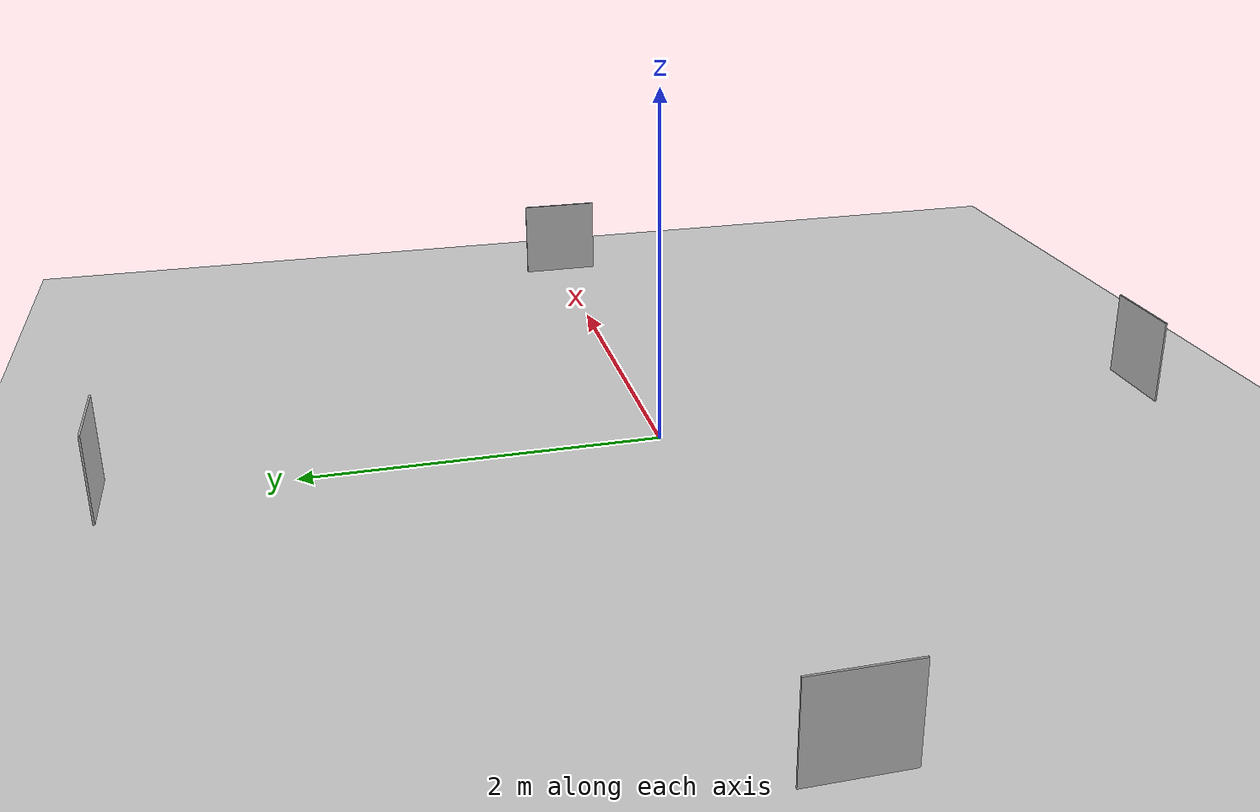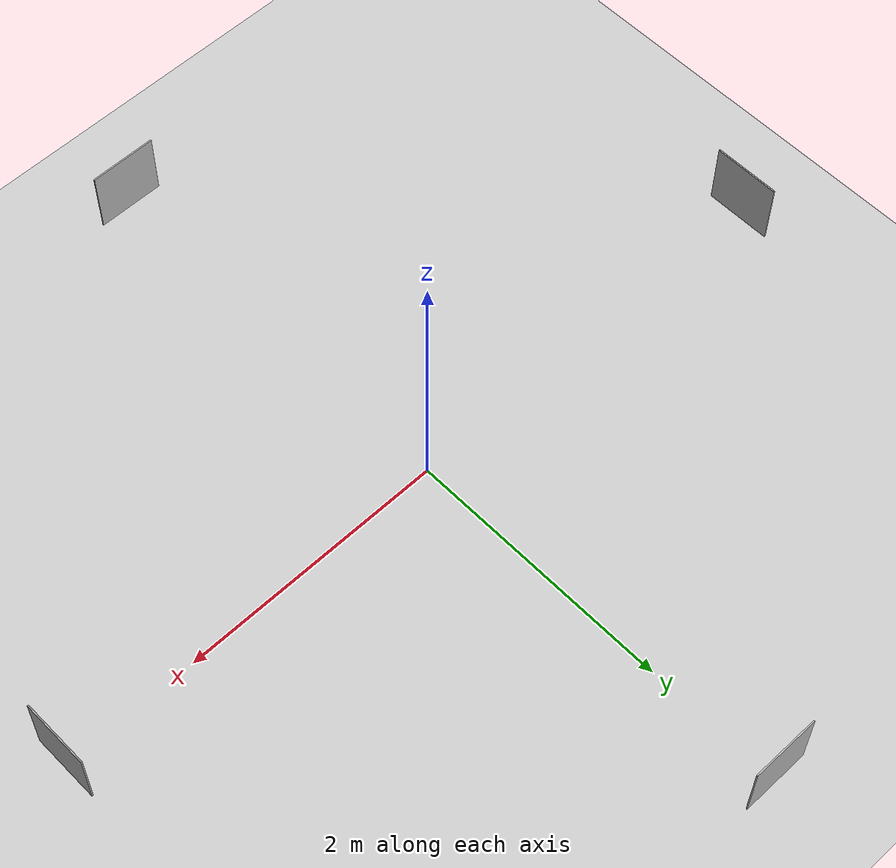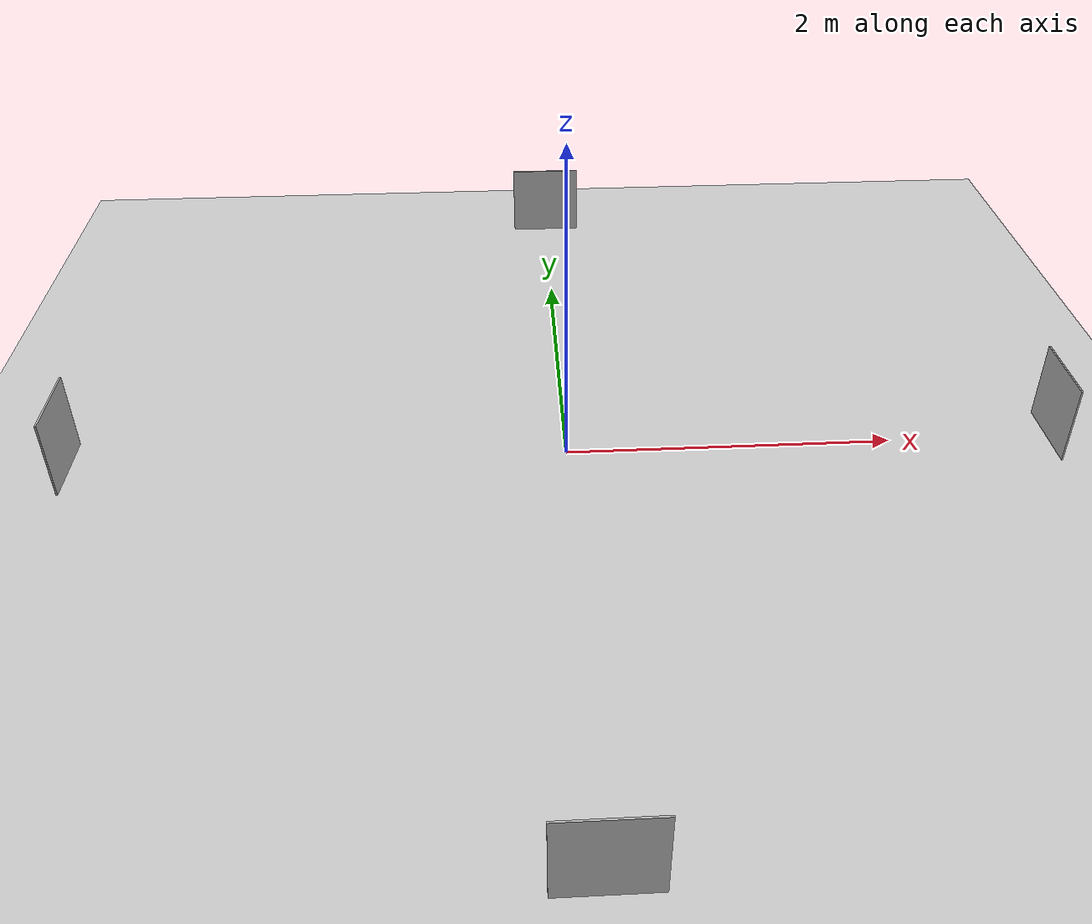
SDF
<sdf version="1.4">
  <world name="default">

    <scene>
      <ambient>0.4 0.4 0.4 1</ambient>
      <background>0.7 0.7 0.7 1</background>
      <shadows>true</shadows>
    </scene>

    <!-- A global light source -->
    <include>
      <uri>model://sun</uri>
    </include>

    <!-- A ground plane -->
    <include>
      <uri>model://ground_plane</uri>
    </include>
    <!-- Load world -->
    <include>
      <uri>model://turtlebot3_autorace/traffic_stop</uri>
       <pose>0 0 0 0 0 0</pose>
    </include>
    <physics type="ode">
      <real_time_update_rate>1000.0</real_time_update_rate>
      <max_step_size>0.001</max_step_size>
      <real_time_factor>1</real_time_factor>
      <ode>
        <solver>
          <type>quick</type>
          <iters>150</iters>
          <precon_iters>0</precon_iters>
          <sor>1.400000</sor>
          <use_dynamic_moi_rescaling>1</use_dynamic_moi_rescaling>
        </solver>
        <constraints>
          <cfm>0.00001</cfm>
          <erp>0.2</erp>
          <contact_max_correcting_vel>2000.000000</contact_max_correcting_vel>
          <contact_surface_layer>0.01000</contact_surface_layer>
        </constraints>
      </ode>
    </physics>
  </world>

</sdf>

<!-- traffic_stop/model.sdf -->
<sdf version="1.6">
  <model name="traffic_stop">
    <static>true</static>
    <link name="box">
      <pose>-3 0 0.25 0 0 0</pose>
      <collision name="collision">
        <geometry>
          <box>
            <size>0.01 0.5 0.5</size>
          </box>
        </geometry>
      </collision>
      <visual name="visual">
        <geometry>
          <box>
            <size>0.01 0.5 0.5</size>
          </box>
        </geometry>
        <material>
          <script>
            <uri>model://turtlebot3_autorace/traffic_stop/materials/scripts</uri>
            <uri>model://turtlebot3_autorace/traffic_stop/materials/textures</uri>
            <name>traffic_stop</name>
          </script>
        </material>
      </visual>
    </link>
    <link name="box1">
      <pose>3 0 0.25 0 0 0</pose>
      <collision name="collision">
        <geometry>
          <box>
            <size>0.01 0.5 0.5</size>
          </box>
        </geometry>
      </collision>
      <visual name="visual">
        <geometry>
          <box>
            <size>0.01 0.5 0.5</size>
          </box>
        </geometry>
        <material>
          <script>
            <uri>model://turtlebot3_autorace/traffic_stop/materials/scripts</uri>
            <uri>model://turtlebot3_autorace/traffic_stop/materials/textures</uri>
            <name>traffic_stop</name>
          </script>
        </material>
      </visual>
    </link>
    <link name="box2">
      <pose>0 3 0.25 0 0 1.57</pose>
      <collision name="collision">
        <geometry>
          <box>
            <size>0.01 0.5 0.5</size>
          </box>
        </geometry>
      </collision>
      <visual name="visual">
        <geometry>
          <box>
            <size>0.01 0.5 0.5</size>
          </box>
        </geometry>
        <material>
          <script>
            <uri>model://turtlebot3_autorace/traffic_stop/materials/scripts</uri>
            <uri>model://turtlebot3_autorace/traffic_stop/materials/textures</uri>
            <name>traffic_stop</name>
          </script>
        </material>
      </visual>
    </link>
    <link name="box3">
      <pose>0 -3 0.25 0 0 1.57</pose>
      <collision name="collision">
        <geometry>
          <box>
            <size>0.01 0.5 0.5</size>
          </box>
        </geometry>
      </collision>
      <visual name="visual">
        <geometry>
          <box>
            <size>0.01 0.5 0.5</size>
          </box>
        </geometry>
        <material>
          <script>
            <uri>model://turtlebot3_autorace/traffic_stop/materials/scripts</uri>
            <uri>model://turtlebot3_autorace/traffic_stop/materials/textures</uri>
            <name>traffic_stop</name>
          </script>
        </material>
      </visual>
    </link>
  </model>
</sdf>
